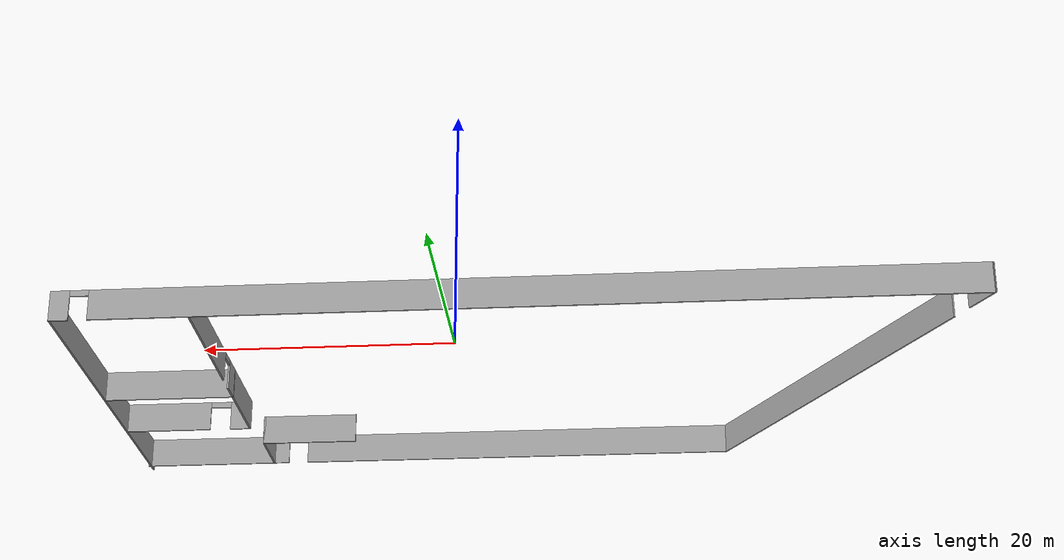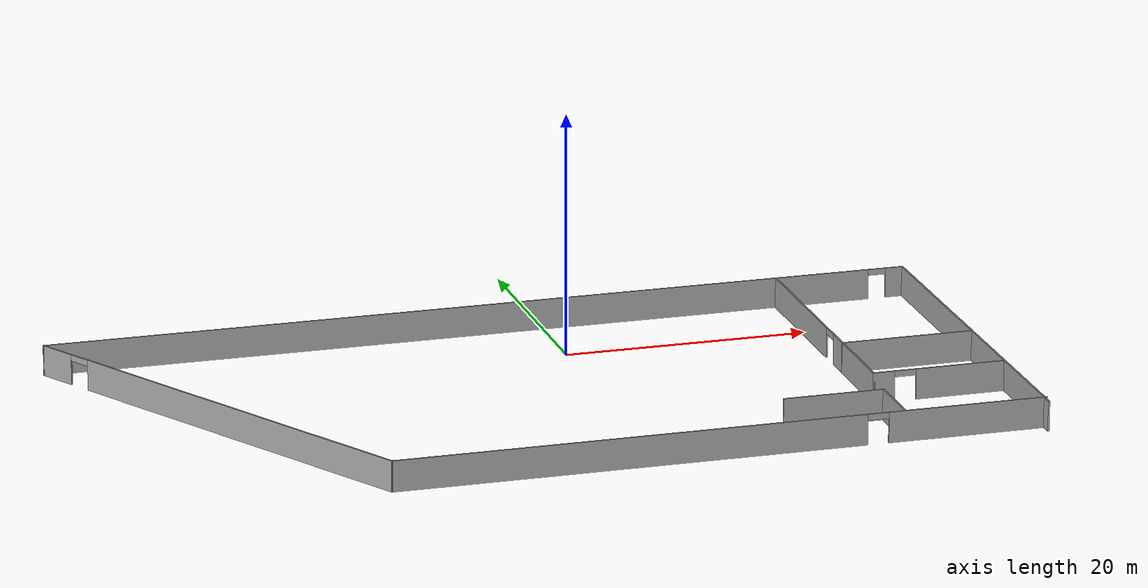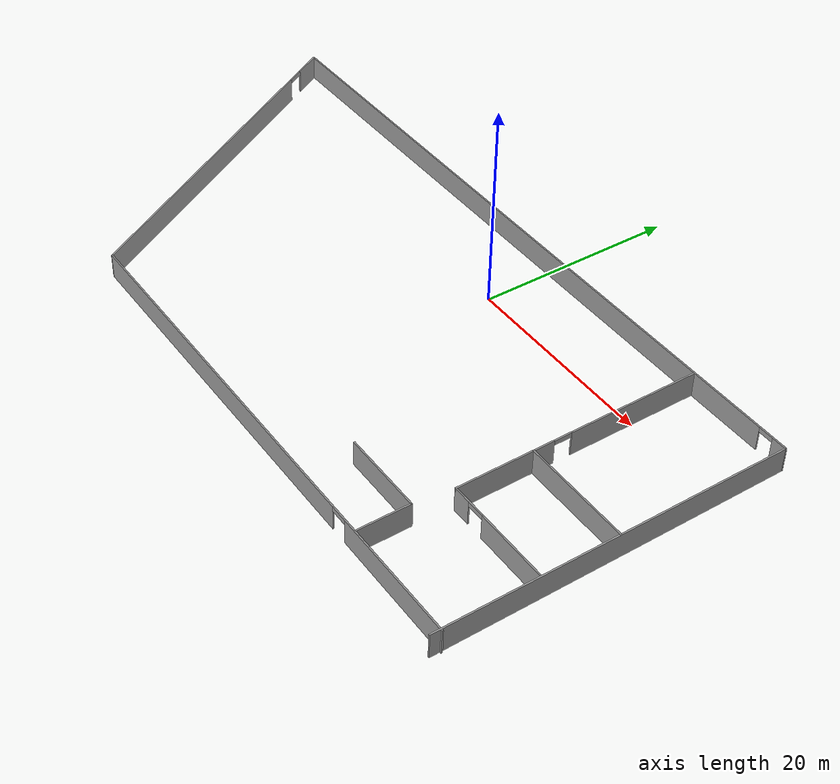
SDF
<?xml version='1.0'?>
<sdf version='1.6'>
  <model name='wom_office'>
    <pose frame=''>-5.12929 -10.5377 0 0 -0 0</pose>
    <link name='Wall_15'>
      <collision name='Wall_15_Collision'>
        <geometry>
          <box>
            <size>34.75 0.15 2.5</size>
          </box>
        </geometry>
        <pose frame=''>0 0 1.25 0 -0 0</pose>
      </collision>
      <visual name='Wall_15_Visual'>
        <pose frame=''>0 0 1.25 0 -0 0</pose>
        <geometry>
          <box>
            <size>34.75 0.15 2.5</size>
          </box>
        </geometry>
        <material>
          <script>
            <uri>file://media/materials/scripts/gazebo.material</uri>
            <name>Gazebo/Grey</name>
          </script>
          <ambient>1 1 1 1</ambient>
        </material>
        <meta>
          <layer>0</layer>
        </meta>
      </visual>
      <pose frame=''>35.7762 -0.009668 0 0 -0 -1.5708</pose>
    </link>
    <link name='Wall_18'>
      <collision name='Wall_18_Collision'>
        <geometry>
          <box>
            <size>11 0.15 2.5</size>
          </box>
        </geometry>
        <pose frame=''>0 0 1.25 0 -0 0</pose>
      </collision>
      <visual name='Wall_18_Visual'>
        <pose frame=''>0 0 1.25 0 -0 0</pose>
        <geometry>
          <box>
            <size>11 0.15 2.5</size>
          </box>
        </geometry>
        <material>
          <script>
            <uri>file://media/materials/scripts/gazebo.material</uri>
            <name>Gazebo/Grey</name>
          </script>
          <ambient>1 1 1 1</ambient>
        </material>
        <meta>
          <layer>0</layer>
        </meta>
      </visual>
      <pose frame=''>30.3437 0.299655 0 0 -0 0</pose>
    </link>
    <link name='Wall_20'>
      <collision name='Wall_20_Collision'>
        <geometry>
          <box>
            <size>8.25 0.15 2.5</size>
          </box>
        </geometry>
        <pose frame=''>0 0 1.25 0 -0 0</pose>
      </collision>
      <visual name='Wall_20_Visual'>
        <pose frame=''>0 0 1.25 0 -0 0</pose>
        <geometry>
          <box>
            <size>8.25 0.15 2.5</size>
          </box>
        </geometry>
        <material>
          <script>
            <uri>file://media/materials/scripts/gazebo.material</uri>
            <name>Gazebo/Grey</name>
          </script>
          <ambient>1 1 1 1</ambient>
        </material>
        <meta>
          <layer>0</layer>
        </meta>
      </visual>
      <pose frame=''>20.3591 -11.1545 0 0 -0 0</pose>
    </link>
    <link name='Wall_21'>
      <collision name='Wall_21_Collision'>
        <geometry>
          <box>
            <size>5.25 0.15 2.5</size>
          </box>
        </geometry>
        <pose frame=''>0 0 1.25 0 -0 0</pose>
      </collision>
      <visual name='Wall_21_Visual'>
        <pose frame=''>0 0 1.25 0 -0 0</pose>
        <geometry>
          <box>
            <size>5.25 0.15 2.5</size>
          </box>
        </geometry>
        <material>
          <script>
            <uri>file://media/materials/scripts/gazebo.material</uri>
            <name>Gazebo/Grey</name>
          </script>
          <ambient>1 1 1 1</ambient>
        </material>
        <meta>
          <layer>0</layer>
        </meta>
      </visual>
      <pose frame=''>24.4091 -13.7045 0 0 -0 -1.5708</pose>
    </link>
    <link name='Wall_23'>
      <pose frame=''>24.9187 8.72466 0 0 -0 1.5708</pose>
      <visual name='Wall_23_Visual_0'>
        <pose frame=''>-7.42244 0 1.25 0 -0 0</pose>
        <geometry>
          <box>
            <size>2.15512 0.15 2.5</size>
          </box>
        </geometry>
        <material>
          <script>
            <uri>file://media/materials/scripts/gazebo.material</uri>
            <name>Gazebo/Grey</name>
          </script>
          <ambient>1 1 1 1</ambient>
        </material>
        <meta>
          <layer>0</layer>
        </meta>
      </visual>
      <collision name='Wall_23_Collision_0'>
        <geometry>
          <box>
            <size>2.15512 0.15 2.5</size>
          </box>
        </geometry>
        <pose frame=''>-7.42244 0 1.25 0 -0 0</pose>
      </collision>
      <visual name='Wall_23_Visual_1'>
        <pose frame=''>1.95317 0 1.25 0 -0 0</pose>
        <geometry>
          <box>
            <size>13.0937 0.15 2.5</size>
          </box>
        </geometry>
        <material>
          <script>
            <uri>file://media/materials/scripts/gazebo.material</uri>
            <name>Gazebo/Grey</name>
          </script>
          <ambient>1 1 1 1</ambient>
        </material>
        <meta>
          <layer>0</layer>
        </meta>
      </visual>
      <collision name='Wall_23_Collision_1'>
        <geometry>
          <box>
            <size>13.0937 0.15 2.5</size>
          </box>
        </geometry>
        <pose frame=''>1.95317 0 1.25 0 -0 0</pose>
      </collision>
      <visual name='Wall_23_Visual_2'>
        <pose frame=''>-5.46927 0 2.25 0 -0 0</pose>
        <geometry>
          <box>
            <size>1.75121 0.15 0.5</size>
          </box>
        </geometry>
        <material>
          <script>
            <uri>file://media/materials/scripts/gazebo.material</uri>
            <name>Gazebo/Grey</name>
          </script>
          <ambient>1 1 1 1</ambient>
        </material>
        <meta>
          <layer>0</layer>
        </meta>
      </visual>
      <collision name='Wall_23_Collision_2'>
        <geometry>
          <box>
            <size>1.75121 0.15 0.5</size>
          </box>
        </geometry>
        <pose frame=''>-5.46927 0 2.25 0 -0 0</pose>
      </collision>
    </link>
    <link name='Wall_29'>
      <collision name='Wall_29_Collision'>
        <geometry>
          <box>
            <size>7.75 0.15 2.5</size>
          </box>
        </geometry>
        <pose frame=''>0 0 1.25 0 -0 0</pose>
      </collision>
      <visual name='Wall_29_Visual'>
        <pose frame=''>0 0 1.25 0 -0 0</pose>
        <geometry>
          <box>
            <size>7.75 0.15 2.5</size>
          </box>
        </geometry>
        <material>
          <script>
            <uri>file://media/materials/scripts/gazebo.material</uri>
            <name>Gazebo/Grey</name>
          </script>
          <ambient>1 1 1 1</ambient>
        </material>
        <meta>
          <layer>0</layer>
        </meta>
      </visual>
      <pose frame=''>24.9187 -3.50034 0 0 -0 -1.5708</pose>
    </link>
    <link name='Wall_30'>
      <pose frame=''>30.3437 -7.30034 0 0 -0 0</pose>
      <visual name='Wall_30_Visual_0'>
        <pose frame=''>-4.59271 0 1.25 0 -0 0</pose>
        <geometry>
          <box>
            <size>1.81458 0.15 2.5</size>
          </box>
        </geometry>
        <material>
          <script>
            <uri>file://media/materials/scripts/gazebo.material</uri>
            <name>Gazebo/Grey</name>
          </script>
          <ambient>1 1 1 1</ambient>
        </material>
        <meta>
          <layer>0</layer>
        </meta>
      </visual>
      <collision name='Wall_30_Collision_0'>
        <geometry>
          <box>
            <size>1.81458 0.15 2.5</size>
          </box>
        </geometry>
        <pose frame=''>-4.59271 0 1.25 0 -0 0</pose>
      </collision>
      <visual name='Wall_30_Visual_1'>
        <pose frame=''>1.78289 0 1.25 0 -0 0</pose>
        <geometry>
          <box>
            <size>7.43422 0.15 2.5</size>
          </box>
        </geometry>
        <material>
          <script>
            <uri>file://media/materials/scripts/gazebo.material</uri>
            <name>Gazebo/Grey</name>
          </script>
          <ambient>1 1 1 1</ambient>
        </material>
        <meta>
          <layer>0</layer>
        </meta>
      </visual>
      <collision name='Wall_30_Collision_1'>
        <geometry>
          <box>
            <size>7.43422 0.15 2.5</size>
          </box>
        </geometry>
        <pose frame=''>1.78289 0 1.25 0 -0 0</pose>
      </collision>
      <visual name='Wall_30_Visual_2'>
        <pose frame=''>-2.80982 0 2.25 0 -0 0</pose>
        <geometry>
          <box>
            <size>1.75121 0.15 0.5</size>
          </box>
        </geometry>
        <material>
          <script>
            <uri>file://media/materials/scripts/gazebo.material</uri>
            <name>Gazebo/Grey</name>
          </script>
          <ambient>1 1 1 1</ambient>
        </material>
        <meta>
          <layer>0</layer>
        </meta>
      </visual>
      <collision name='Wall_30_Collision_2'>
        <geometry>
          <box>
            <size>1.75121 0.15 0.5</size>
          </box>
        </geometry>
        <pose frame=''>-2.80982 0 2.25 0 -0 0</pose>
      </collision>
    </link>
    <link name='Wall_4'>
      <pose frame=''>-0.066074 17.2863 0 0 -0 0.000113</pose>
      <visual name='Wall_4_Visual_0'>
        <pose frame=''>-1.51504 0 1.25 0 -0 0</pose>
        <geometry>
          <box>
            <size>68.8045 0.15 2.5</size>
          </box>
        </geometry>
        <material>
          <script>
            <uri>file://media/materials/scripts/gazebo.material</uri>
            <name>Gazebo/Grey</name>
          </script>
          <ambient>1 1 1 1</ambient>
        </material>
        <meta>
          <layer>0</layer>
        </meta>
      </visual>
      <collision name='Wall_4_Collision_0'>
        <geometry>
          <box>
            <size>68.8045 0.15 2.5</size>
          </box>
        </geometry>
        <pose frame=''>-1.51504 0 1.25 0 -0 0</pose>
      </collision>
      <visual name='Wall_4_Visual_1'>
        <pose frame=''>35.1449 0 1.25 0 -0 0</pose>
        <geometry>
          <box>
            <size>1.54488 0.15 2.5</size>
          </box>
        </geometry>
        <material>
          <script>
            <uri>file://media/materials/scripts/gazebo.material</uri>
            <name>Gazebo/Grey</name>
          </script>
          <ambient>1 1 1 1</ambient>
        </material>
        <meta>
          <layer>0</layer>
        </meta>
      </visual>
      <collision name='Wall_4_Collision_1'>
        <geometry>
          <box>
            <size>1.54488 0.15 2.5</size>
          </box>
        </geometry>
        <pose frame=''>35.1449 0 1.25 0 -0 0</pose>
      </collision>
      <visual name='Wall_4_Visual_2'>
        <pose frame=''>33.6298 0 2.25 0 -0 0</pose>
        <geometry>
          <box>
            <size>1.4852 0.15 0.5</size>
          </box>
        </geometry>
        <material>
          <script>
            <uri>file://media/materials/scripts/gazebo.material</uri>
            <name>Gazebo/Grey</name>
          </script>
          <ambient>1 1 1 1</ambient>
        </material>
        <meta>
          <layer>0</layer>
        </meta>
      </visual>
      <collision name='Wall_4_Collision_2'>
        <geometry>
          <box>
            <size>1.4852 0.15 0.5</size>
          </box>
        </geometry>
        <pose frame=''>33.6298 0 2.25 0 -0 0</pose>
      </collision>
    </link>
    <link name='Wall_6'>
      <pose frame=''>9.72623 -16.3629 0 0 -0 3.14159</pose>
      <visual name='Wall_6_Visual_0'>
        <pose frame=''>-19.8106 0 1.25 0 -0 0</pose>
        <geometry>
          <box>
            <size>12.948 0.15 2.5</size>
          </box>
        </geometry>
        <material>
          <script>
            <uri>file://media/materials/scripts/gazebo.material</uri>
            <name>Gazebo/Grey</name>
          </script>
          <ambient>1 1 1 1</ambient>
        </material>
        <meta>
          <layer>0</layer>
        </meta>
      </visual>
      <collision name='Wall_6_Collision_0'>
        <geometry>
          <box>
            <size>12.948 0.15 2.5</size>
          </box>
        </geometry>
        <pose frame=''>-19.8106 0 1.25 0 -0 0</pose>
      </collision>
      <visual name='Wall_6_Visual_1'>
        <pose frame=''>7.32301 0 1.25 0 -0 0</pose>
        <geometry>
          <box>
            <size>37.9232 0.15 2.5</size>
          </box>
        </geometry>
        <material>
          <script>
            <uri>file://media/materials/scripts/gazebo.material</uri>
            <name>Gazebo/Grey</name>
          </script>
          <ambient>1 1 1 1</ambient>
        </material>
        <meta>
          <layer>0</layer>
        </meta>
      </visual>
      <collision name='Wall_6_Collision_1'>
        <geometry>
          <box>
            <size>37.9232 0.15 2.5</size>
          </box>
        </geometry>
        <pose frame=''>7.32301 0 1.25 0 -0 0</pose>
      </collision>
      <visual name='Wall_6_Visual_2'>
        <pose frame=''>-12.4876 0 2.25 0 -0 0</pose>
        <geometry>
          <box>
            <size>1.69801 0.15 0.5</size>
          </box>
        </geometry>
        <material>
          <script>
            <uri>file://media/materials/scripts/gazebo.material</uri>
            <name>Gazebo/Grey</name>
          </script>
          <ambient>1 1 1 1</ambient>
        </material>
        <meta>
          <layer>0</layer>
        </meta>
      </visual>
      <collision name='Wall_6_Collision_2'>
        <geometry>
          <box>
            <size>1.69801 0.15 0.5</size>
          </box>
        </geometry>
        <pose frame=''>-12.4876 0 2.25 0 -0 0</pose>
      </collision>
    </link>
    <link name='Wall_7'>
      <pose frame=''>-26.1959 0.459675 0 0 -0 2.0944</pose>
      <visual name='Wall_7_Visual_0'>
        <pose frame=''>-2.58892 0 1.25 0 -0 0</pose>
        <geometry>
          <box>
            <size>33.8222 0.15 2.5</size>
          </box>
        </geometry>
        <material>
          <script>
            <uri>file://media/materials/scripts/gazebo.material</uri>
            <name>Gazebo/Grey</name>
          </script>
          <ambient>1 1 1 1</ambient>
        </material>
        <meta>
          <layer>0</layer>
        </meta>
      </visual>
      <collision name='Wall_7_Collision_0'>
        <geometry>
          <box>
            <size>33.8222 0.15 2.5</size>
          </box>
        </geometry>
        <pose frame=''>-2.58892 0 1.25 0 -0 0</pose>
      </collision>
      <visual name='Wall_7_Visual_1'>
        <pose frame=''>17.8646 0 1.25 0 -0 0</pose>
        <geometry>
          <box>
            <size>3.2708 0.15 2.5</size>
          </box>
        </geometry>
        <material>
          <script>
            <uri>file://media/materials/scripts/gazebo.material</uri>
            <name>Gazebo/Grey</name>
          </script>
          <ambient>1 1 1 1</ambient>
        </material>
        <meta>
          <layer>0</layer>
        </meta>
      </visual>
      <collision name='Wall_7_Collision_1'>
        <geometry>
          <box>
            <size>3.2708 0.15 2.5</size>
          </box>
        </geometry>
        <pose frame=''>17.8646 0 1.25 0 -0 0</pose>
      </collision>
      <visual name='Wall_7_Visual_2'>
        <pose frame=''>15.2757 0 2.25 0 -0 0</pose>
        <geometry>
          <box>
            <size>1.90705 0.15 0.5</size>
          </box>
        </geometry>
        <material>
          <script>
            <uri>file://media/materials/scripts/gazebo.material</uri>
            <name>Gazebo/Grey</name>
          </script>
          <ambient>1 1 1 1</ambient>
        </material>
        <meta>
          <layer>0</layer>
        </meta>
      </visual>
      <collision name='Wall_7_Collision_2'>
        <geometry>
          <box>
            <size>1.90705 0.15 0.5</size>
          </box>
        </geometry>
        <pose frame=''>15.2757 0 2.25 0 -0 0</pose>
      </collision>
    </link>
    <static>1</static>
  </model>
</sdf>
